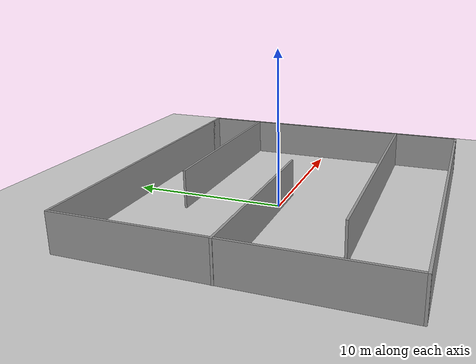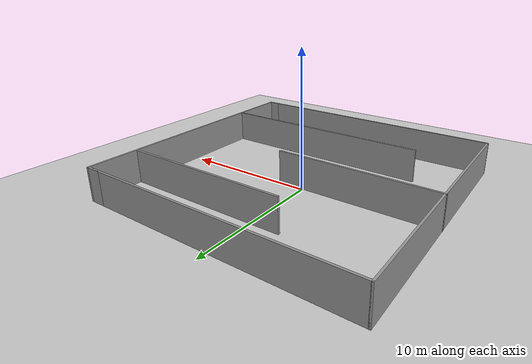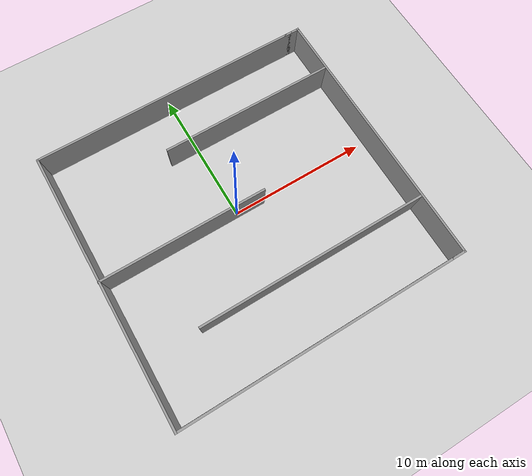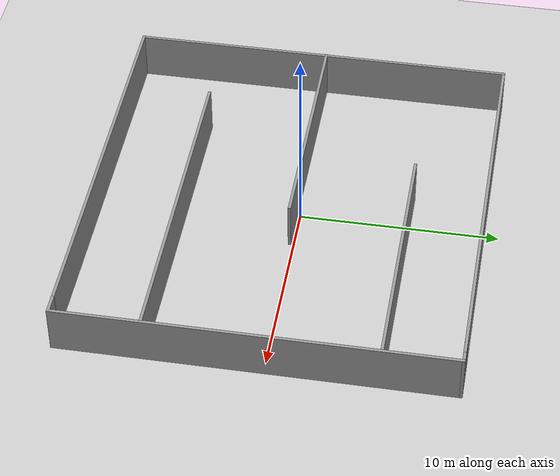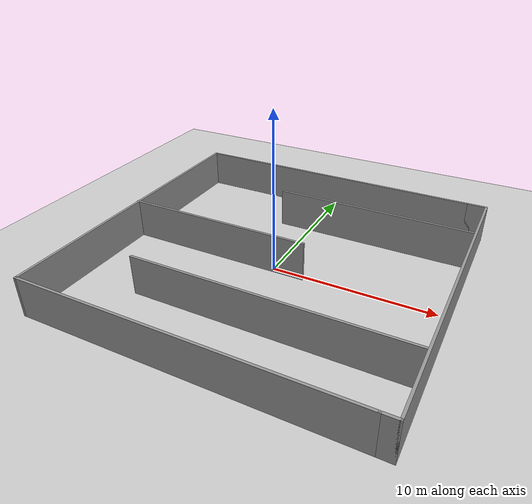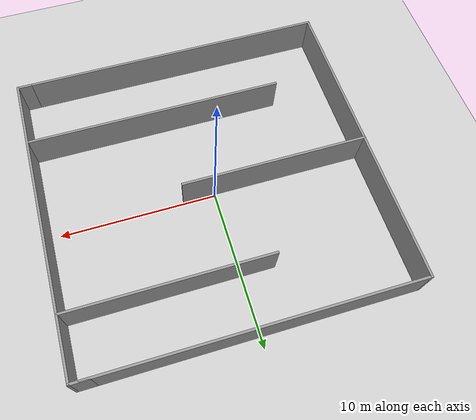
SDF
<sdf version="1.7">
 <world name="default">
  <light name="sun" type="directional">
   <pose>0 0 10 0 -0 0</pose>
   <diffuse>0.8 0.8 0.8 1</diffuse>
   <specular>0.2 0.2 0.2 1</specular>
   <attenuation>
    <range>1000</range>
    <constant>0.9</constant>
    <linear>0.01</linear>
    <quadratic>0.001</quadratic>
   </attenuation>
   <direction>-0.5 0.1 -0.9</direction>
   <spot><inner_angle>0</inner_angle><outer_angle>0</outer_angle><falloff>0</falloff></spot>
  </light>
  <model name="ground_plane">
   <static>1</static>
   <link name="link">
    <collision name="collision">
     <geometry><plane><normal>0 0 1</normal><size>100 100</size></plane></geometry>
     <surface>
      <contact><collide_bitmask>65535</collide_bitmask></contact>
      <friction><ode><mu>100</mu><mu2>50</mu2></ode></friction>
     </surface>
    </collision>
    <visual name="visual">
     <cast_shadows>0</cast_shadows>
     <geometry><plane><normal>0 0 1</normal><size>100 100</size></plane></geometry>
     <material>
      <script><uri>file://media/materials/scripts/gazebo.material</uri><name>Gazebo/Grey</name></script>
     </material>
    </visual>
   </link>
  </model>
  <gravity>0 0 -9.8</gravity>
  <magnetic_field>6e-06 2.3e-05 -4.2e-05</magnetic_field>
  <atmosphere type="adiabatic"/>
  <physics type="ode">
   <max_step_size>0.001</max_step_size>
   <real_time_factor>1</real_time_factor>
   <real_time_update_rate>1000</real_time_update_rate>
  </physics>
  <scene><ambient>0.4 0.4 0.4 1</ambient><background>0.7 0.7 0.7 1</background><shadows>1</shadows></scene>
  <spherical_coordinates>
   <surface_model>EARTH_WGS84</surface_model>
   <latitude_deg>0</latitude_deg>
   <longitude_deg>0</longitude_deg>
   <elevation>0</elevation>
   <heading_deg>0</heading_deg>
  </spherical_coordinates>
  <model name="maze">
   <pose>0.355873 -0.445897 0 0 -0 0</pose>
   <link name="Wall_10">
    <collision name="Wall_10_Collision">
     <geometry><box><size>1 0.15 2.5</size></box></geometry>
     <pose>0 0 1.25 0 -0 0</pose>
    </collision>
    <visual name="Wall_10_Visual">
     <pose>0 0 1.25 0 -0 0</pose>
     <geometry><box><size>1 0.15 2.5</size></box></geometry>
     <material>
      <script><uri>file://media/materials/scripts/gazebo.material</uri><name>Gazebo/Grey</name></script>
      <ambient>1 1 1 1</ambient>
     </material>
     <meta><layer>0</layer></meta>
    </visual>
    <pose>9.8104 -9.675 0 0 -0 0</pose>
   </link>
   <link name="Wall_11">
    <collision name="Wall_11_Collision">
     <geometry><box><size>19.5 0.15 2.5</size></box></geometry>
     <pose>0 0 1.25 0 -0 0</pose>
    </collision>
    <visual name="Wall_11_Visual">
     <pose>0 0 1.25 0 -0 0</pose>
     <geometry><box><size>19.5 0.15 2.5</size></box></geometry>
     <material>
      <script><uri>file://media/materials/scripts/gazebo.material</uri><name>Gazebo/Grey</name></script>
      <ambient>1 1 1 1</ambient>
     </material>
     <meta><layer>0</layer></meta>
    </visual>
    <pose>10.2354 -0 0 0 -0 1.5708</pose>
   </link>
   <link name="Wall_12">
    <collision name="Wall_12_Collision">
     <geometry><box><size>1.25 0.15 2.5</size></box></geometry>
     <pose>0 0 1.25 0 -0 0</pose>
    </collision>
    <visual name="Wall_12_Visual">
     <pose>0 0 1.25 0 -0 0</pose>
     <geometry><box><size>1.25 0.15 2.5</size></box></geometry>
     <material>
      <script><uri>file://media/materials/scripts/gazebo.material</uri><name>Gazebo/Grey</name></script>
      <ambient>1 1 1 1</ambient>
     </material>
     <meta><layer>0</layer></meta>
    </visual>
    <pose>9.6854 9.675 0 0 -0 3.14159</pose>
   </link>
   <link name="Wall_14">
    <collision name="Wall_14_Collision">
     <geometry><box><size>16.5 0.15 2.5</size></box></geometry>
     <pose>0 0 1.25 0 -0 0</pose>
    </collision>
    <visual name="Wall_14_Visual">
     <pose>0 0 1.25 0 -0 0</pose>
     <geometry><box><size>16.5 0.15 2.5</size></box></geometry>
     <material>
      <script><uri>file://media/materials/scripts/gazebo.material</uri><name>Gazebo/Grey</name></script>
      <ambient>1 1 1 1</ambient>
     </material>
     <meta><layer>0</layer></meta>
    </visual>
    <pose>1.9447 -5.30409 0 0 -0 0</pose>
   </link>
   <link name="Wall_17">
    <collision name="Wall_17_Collision">
     <geometry><box><size>12 0.15 2.5</size></box></geometry>
     <pose>0 0 1.25 0 -0 0</pose>
    </collision>
    <visual name="Wall_17_Visual">
     <pose>0 0 1.25 0 -0 0</pose>
     <geometry><box><size>12 0.15 2.5</size></box></geometry>
     <material>
      <script><uri>file://media/materials/scripts/gazebo.material</uri><name>Gazebo/Grey</name></script>
      <ambient>1 1 1 1</ambient>
     </material>
     <meta><layer>0</layer></meta>
    </visual>
    <pose>-4.3104 0.238324 0 0 -0 0</pose>
   </link>
   <link name="Wall_19">
    <collision name="Wall_19_Collision">
     <geometry><box><size>12.75 0.15 2.5</size></box></geometry>
     <pose>0 0 1.25 0 -0 0</pose>
    </collision>
    <visual name="Wall_19_Visual">
     <pose>0 0 1.25 0 -0 0</pose>
     <geometry><box><size>12.75 0.15 2.5</size></box></geometry>
     <material>
      <script><uri>file://media/materials/scripts/gazebo.material</uri><name>Gazebo/Grey</name></script>
      <ambient>1 1 1 1</ambient>
     </material>
     <meta><layer>0</layer></meta>
    </visual>
    <pose>3.87253 5.94256 0 0 -0 0</pose>
   </link>
   <link name="Wall_3">
    <collision name="Wall_3_Collision">
     <geometry><box><size>19.75 0.15 2.5</size></box></geometry>
     <pose>0 0 1.25 0 -0 0</pose>
    </collision>
    <visual name="Wall_3_Visual">
     <pose>0 0 1.25 0 -0 0</pose>
     <geometry><box><size>19.75 0.15 2.5</size></box></geometry>
     <material>
      <script><uri>file://media/materials/scripts/gazebo.material</uri><name>Gazebo/Grey</name></script>
      <ambient>1 1 1 1</ambient>
     </material>
     <meta><layer>0</layer></meta>
    </visual>
    <pose>-0.414601 -9.675 0 0 -0 3.14159</pose>
   </link>
   <link name="Wall_4">
    <collision name="Wall_4_Collision">
     <geometry><box><size>19.5 0.15 2.5</size></box></geometry>
     <pose>0 0 1.25 0 -0 0</pose>
    </collision>
    <visual name="Wall_4_Visual">
     <pose>0 0 1.25 0 -0 0</pose>
     <geometry><box><size>19.5 0.15 2.5</size></box></geometry>
     <material>
      <script><uri>file://media/materials/scripts/gazebo.material</uri><name>Gazebo/Grey</name></script>
      <ambient>1 1 1 1</ambient>
     </material>
     <meta><layer>0</layer></meta>
    </visual>
    <pose>-10.2146 -0 0 0 -0 1.5708</pose>
   </link>
   <link name="Wall_7">
    <collision name="Wall_7_Collision">
     <geometry><box><size>20 0.15 2.5</size></box></geometry>
     <pose>0 0 1.25 0 -0 0</pose>
    </collision>
    <visual name="Wall_7_Visual">
     <pose>0 0 1.25 0 -0 0</pose>
     <geometry><box><size>20 0.15 2.5</size></box></geometry>
     <material>
      <script><uri>file://media/materials/scripts/gazebo.material</uri><name>Gazebo/Grey</name></script>
      <ambient>1 1 1 1</ambient>
     </material>
     <meta><layer>0</layer></meta>
    </visual>
    <pose>-0.289601 9.675 0 0 -0 0</pose>
   </link>
   <static>1</static>
  </model>
 </world>
</sdf>
